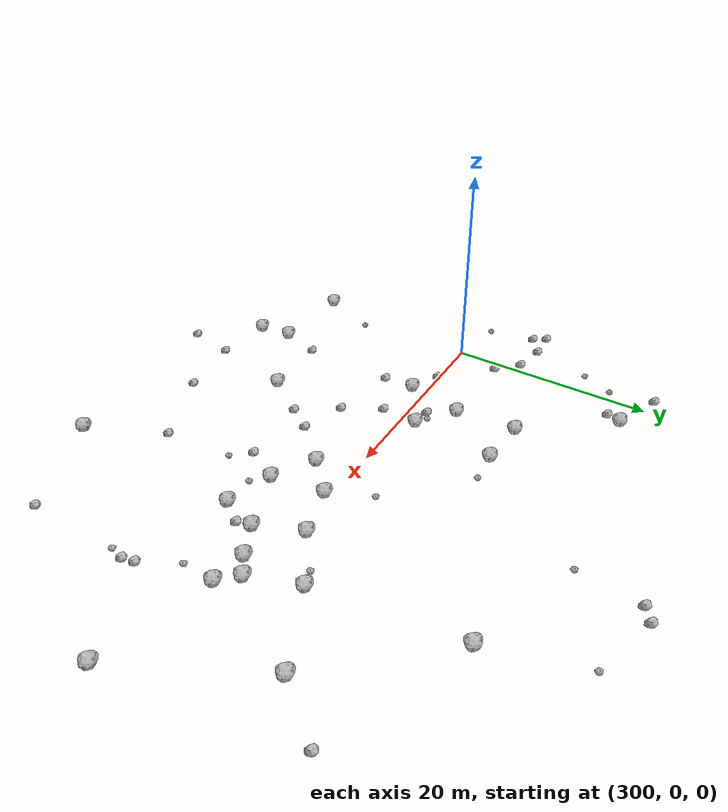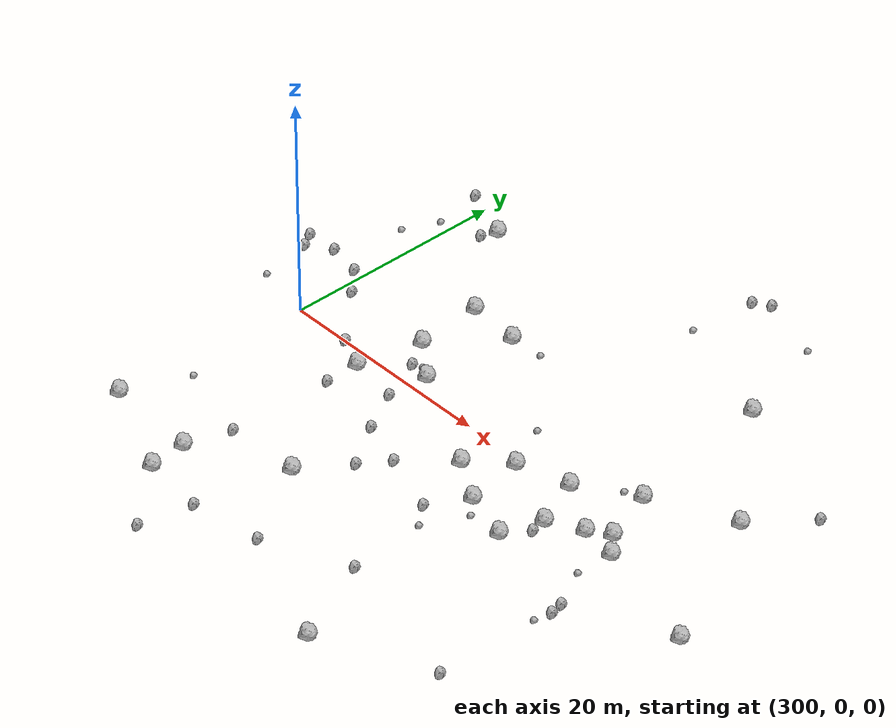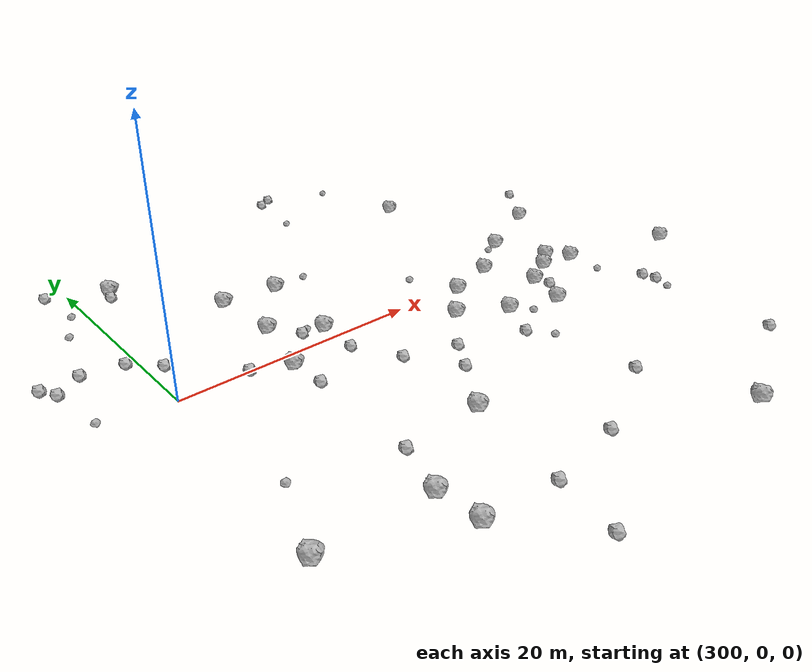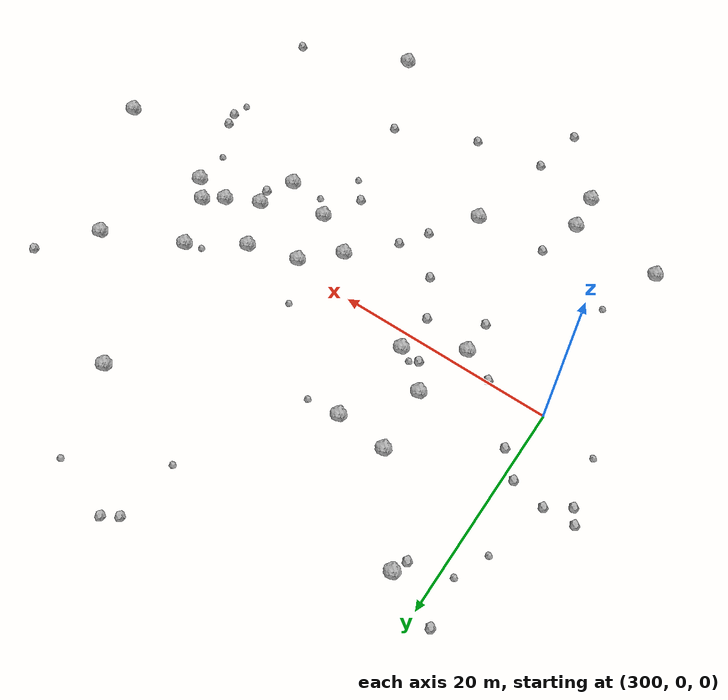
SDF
<sdf version="1.6">
 <world name="default">
  <include><uri>model://sun</uri></include>
  <model name="rock1_8_3">
   <include><uri>model://rock1</uri><pose>309.89149268017627 4.179843957692398 0.5 0 0 0</pose></include>
  </model>
  <model name="rock1_8_4">
   <include><uri>model://rock1</uri><pose>330.68090282087246 0.6535890226558791 0.5 0 0 0</pose></include>
  </model>
  <model name="rock1_8_5">
   <include><uri>model://rock1</uri><pose>303.21249763778593 18.447658948759873 0.5 0 0 0</pose></include>
  </model>
  <model name="rock1_8_6">
   <include><uri>model://rock1</uri><pose>335.4481497525935 -2.2245560157304247 0.5 0 0 0</pose></include>
  </model>
  <model name="rock1_8_7">
   <include><uri>model://rock1</uri><pose>331.24237830993246 -7.239496983260395 0.5 0 0 0</pose></include>
  </model>
  <model name="rock1_8_8">
   <include><uri>model://rock1</uri><pose>349.09106383088056 -5.4869468115577575 0.5 0 0 0</pose></include>
  </model>
  <model name="rock1_8_9">
   <include><uri>model://rock1</uri><pose>342.7063889421229 7.112022961439912 0.5 0 0 0</pose></include>
  </model>
  <model name="rock1_8_10">
   <include><uri>model://rock1</uri><pose>326.0276281870605 -0.6639333001946746 0.5 0 0 0</pose></include>
  </model>
  <model name="rock1_8_11">
   <include><uri>model://rock1</uri><pose>326.82014186657614 -5.885684439454877 0.5 0 0 0</pose></include>
  </model>
  <model name="rock1_8_12">
   <include><uri>model://rock1</uri><pose>330.28642625589214 -25.575535387583116 0.5 0 0 0</pose></include>
  </model>
  <model name="rock1_8_13">
   <include><uri>model://rock1</uri><pose>314.3170918273378 9.789875446717922 0.5 0 0 0</pose></include>
  </model>
  <model name="rock1_8_14">
   <include><uri>model://rock1</uri><pose>309.5007057069837 10.194520309502138 0.5 0 0 0</pose></include>
  </model>
  <model name="rock1_8_15">
   <include><uri>model://rock1</uri><pose>298.5794318109222 -17.5180232591865 0.5 0 0 0</pose></include>
  </model>
  <model name="rock1_8_16">
   <include><uri>model://rock1</uri><pose>322.9628678513942 -3.590937741351979 0.5 0 0 0</pose></include>
  </model>
  <model name="rock1_8_17">
   <include><uri>model://rock1</uri><pose>335.5141592707138 3.7807416472478224 0.5 0 0 0</pose></include>
  </model>
  <model name="rock1_8_18">
   <include><uri>model://rock1</uri><pose>314.8830061022348 -13.796809870540383 0.5 0 0 0</pose></include>
  </model>
  <model name="rock1_8_19">
   <include><uri>model://rock1</uri><pose>332.47991868935134 -3.70646541292399 0.5 0 0 0</pose></include>
  </model>
  <model name="rock1_8_20">
   <include><uri>model://rock1</uri><pose>313.4069698032788 1.486090273326223 0.5 0 0 0</pose></include>
  </model>
  <model name="rock1_8_21">
   <include><uri>model://rock1</uri><pose>307.29350285608484 -21.427956712149633 0.5 0 0 0</pose></include>
  </model>
  <model name="rock1_8_22">
   <include><uri>model://rock1</uri><pose>306.9950097048289 -18.050907070098777 0.5 0 0 0</pose></include>
  </model>
  <model name="rock1_8_23">
   <include><uri>model://rock1</uri><pose>338.7398562268312 -2.670020286648846 0.5 0 0 0</pose></include>
  </model>
  <model name="rock1_8_24">
   <include><uri>model://rock1</uri><pose>333.6855113976641 17.348805668486627 0.5 0 0 0</pose></include>
  </model>
  <model name="rock1_8_25">
   <include><uri>model://rock1</uri><pose>308.52823203987964 -1.5003515458232073 0.5 0 0 0</pose></include>
  </model>
  <model name="rock1_8_26">
   <include><uri>model://rock1</uri><pose>337.18644462709926 -0.9883074922797448 0.5 0 0 0</pose></include>
  </model>
  <model name="rock2_8_0">
   <include><uri>model://rock2</uri><pose>332.7192888944328 -5.120243215428214 0.3 0 0 0</pose></include>
  </model>
  <model name="rock2_8_1">
   <include><uri>model://rock2</uri><pose>296.0110335150669 7.108301070602835 0.3 0 0 0</pose></include>
  </model>
  <model name="rock2_8_2">
   <include><uri>model://rock2</uri><pose>326.8230128959903 -17.90073994913234 0.3 0 0 0</pose></include>
  </model>
  <model name="rock2_8_3">
   <include><uri>model://rock2</uri><pose>323.8131336731162 27.101182212575885 0.3 0 0 0</pose></include>
  </model>
  <model name="rock2_8_4">
   <include><uri>model://rock2</uri><pose>312.0350939072531 -26.82596566278853 0.3 0 0 0</pose></include>
  </model>
  <model name="rock2_8_5">
   <include><uri>model://rock2</uri><pose>315.11911217105734 -5.8690660675783946 0.3 0 0 0</pose></include>
  </model>
  <model name="rock2_8_6">
   <include><uri>model://rock2</uri><pose>340.0272598415272 -21.20890070362536 0.3 0 0 0</pose></include>
  </model>
  <model name="rock2_8_7">
   <include><uri>model://rock2</uri><pose>319.35949157826536 -7.30908845902206 0.3 0 0 0</pose></include>
  </model>
  <model name="rock2_8_8">
   <include><uri>model://rock2</uri><pose>340.3764042278867 -9.351083431220395 0.3 0 0 0</pose></include>
  </model>
  <model name="rock2_8_9">
   <include><uri>model://rock2</uri><pose>313.09387884190465 -2.188746801334151 0.3 0 0 0</pose></include>
  </model>
  <model name="rock2_8_10">
   <include><uri>model://rock2</uri><pose>325.17842454317025 27.972831277248623 0.3 0 0 0</pose></include>
  </model>
  <model name="rock2_8_11">
   <include><uri>model://rock2</uri><pose>299.15577570124134 6.468047083064228 0.3 0 0 0</pose></include>
  </model>
  <model name="rock2_8_12">
   <include><uri>model://rock2</uri><pose>311.42404524572163 1.7459769421277613 0.3 0 0 0</pose></include>
  </model>
  <model name="rock2_8_13">
   <include><uri>model://rock2</uri><pose>302.6565367963559 17.08734248544402 0.3 0 0 0</pose></include>
  </model>
  <model name="rock2_8_14">
   <include><uri>model://rock2</uri><pose>301.19146031613013 4.422615022958432 0.3 0 0 0</pose></include>
  </model>
  <model name="rock2_8_15">
   <include><uri>model://rock2</uri><pose>308.53053875930783 -4.6206406535144815 0.3 0 0 0</pose></include>
  </model>
  <model name="rock2_8_16">
   <include><uri>model://rock2</uri><pose>340.6174161144077 -10.539792753895586 0.3 0 0 0</pose></include>
  </model>
  <model name="rock2_8_17">
   <include><uri>model://rock2</uri><pose>319.39987346756027 -21.1344763481748 0.3 0 0 0</pose></include>
  </model>
  <model name="rock2_8_18">
   <include><uri>model://rock2</uri><pose>305.55149069385385 -0.12037605972513177 0.3 0 0 0</pose></include>
  </model>
  <model name="rock2_8_19">
   <include><uri>model://rock2</uri><pose>293.15614021046326 6.979522312373568 0.3 0 0 0</pose></include>
  </model>
  <model name="rock2_8_20">
   <include><uri>model://rock2</uri><pose>293.9429290570776 5.723327100284649 0.3 0 0 0</pose></include>
  </model>
  <model name="rock2_8_21">
   <include><uri>model://rock2</uri><pose>346.46180804753226 11.938029500261777 0.3 0 0 0</pose></include>
  </model>
  <model name="rock2_8_22">
   <include><uri>model://rock2</uri><pose>317.7074998760391 -9.736602601149308 0.3 0 0 0</pose></include>
  </model>
  <model name="rock2_8_23">
   <include><uri>model://rock2</uri><pose>313.01717550025836 -22.0804570853185 0.3 0 0 0</pose></include>
  </model>
  <model name="rock2_8_24">
   <include><uri>model://rock2</uri><pose>308.1929749632317 -14.026926429176207 0.3 0 0 0</pose></include>
  </model>
  <model name="rock2_8_25">
   <include><uri>model://rock2</uri><pose>324.87982955050444 -9.23008224960084 0.3 0 0 0</pose></include>
  </model>
  <model name="rock2_8_26">
   <include><uri>model://rock2</uri><pose>298.33220273256956 20.46644068664078 0.3 0 0 0</pose></include>
  </model>
  <model name="rock3_8_0">
   <include><uri>model://rock3</uri><pose>298.8898965936778 16.04736071642592 0.2 0 0 0</pose></include>
  </model>
  <model name="rock3_8_1">
   <include><uri>model://rock3</uri><pose>331.10036397137395 25.968183140648065 0.2 0 0 0</pose></include>
  </model>
  <model name="rock3_8_2">
   <include><uri>model://rock3</uri><pose>300.7627901552302 -11.82435342376974 0.2 0 0 0</pose></include>
  </model>
  <model name="rock3_8_3">
   <include><uri>model://rock3</uri><pose>297.5399165331807 12.970058996511632 0.2 0 0 0</pose></include>
  </model>
  <model name="rock3_8_4">
   <include><uri>model://rock3</uri><pose>312.1411801537391 2.150492367044727 0.2 0 0 0</pose></include>
  </model>
  <model name="rock3_8_5">
   <include><uri>model://rock3</uri><pose>324.02110315055677 3.3863264237216413 0.2 0 0 0</pose></include>
  </model>
  <model name="rock3_8_6">
   <include><uri>model://rock3</uri><pose>323.0580678317836 21.177551252204537 0.2 0 0 0</pose></include>
  </model>
  <model name="rock3_8_7">
   <include><uri>model://rock3</uri><pose>328.09613570572134 -7.323230705665637 0.2 0 0 0</pose></include>
  </model>
  <model name="rock3_8_8">
   <include><uri>model://rock3</uri><pose>317.2835379494431 10.005275396661986 0.2 0 0 0</pose></include>
  </model>
  <model name="rock3_8_9">
   <include><uri>model://rock3</uri><pose>338.46955251903427 -5.926115555590243 0.2 0 0 0</pose></include>
  </model>
  <model name="rock3_8_10">
   <include><uri>model://rock3</uri><pose>294.66682560812256 1.0157577969604645 0.2 0 0 0</pose></include>
  </model>
  <model name="rock3_8_11">
   <include><uri>model://rock3</uri><pose>340.192137266745 -12.024631193828206 0.2 0 0 0</pose></include>
  </model>
  <model name="rock3_8_12">
   <include><uri>model://rock3</uri><pose>333.91326972027196 3.2474525211855294 0.2 0 0 0</pose></include>
  </model>
  <model name="rock3_8_13">
   <include><uri>model://rock3</uri><pose>326.31279931830034 -11.022669128596508 0.2 0 0 0</pose></include>
  </model>
 </world>
</sdf>
